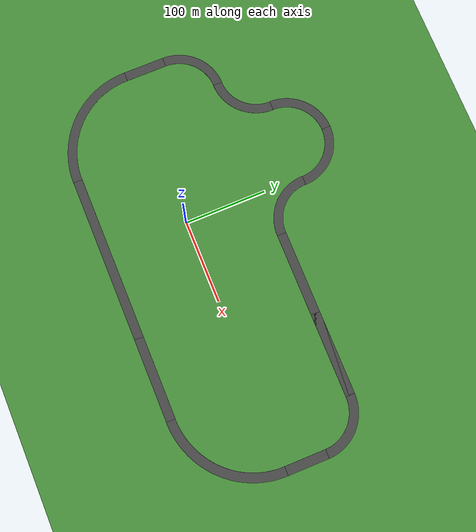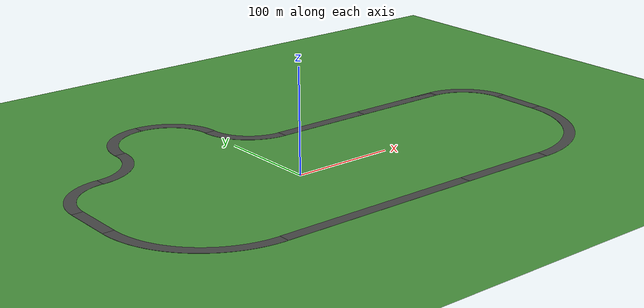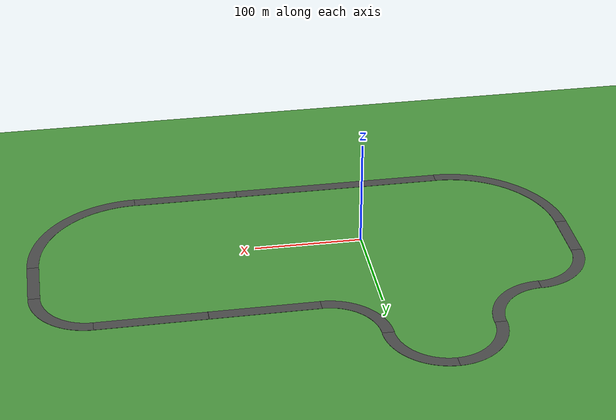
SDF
<sdf version="1.6">
 <world name="default">
  <light name="sun" type="directional">
   <pose>0 0 10 0 -0 0</pose>
   <diffuse>0.8 0.8 0.8 1</diffuse>
   <specular>0.2 0.2 0.2 1</specular>
   <attenuation>
    <range>1000</range>
    <constant>0.9</constant>
    <linear>0.01</linear>
    <quadratic>0.001</quadratic>
   </attenuation>
   <direction>-0.5 0.1 -0.9</direction>
  </light>
  <scene>
   <ambient>0.4 0.4 0.4 1</ambient>
   <background>0 0.9 1 1</background>
   <shadows>1</shadows>
   <grid>0</grid>
  </scene>
  <model name="ground_plane">
   <static>1</static>
   <link name="link">
    <collision name="collision">
     <geometry><plane><normal>0 0 1</normal><size>100 100</size></plane></geometry>
     <surface><friction><ode><mu>100</mu><mu2>50</mu2></ode></friction></surface>
    </collision>
    <visual name="visual">
     <cast_shadows>0</cast_shadows>
     <geometry><plane><normal>0 0 1</normal><size>10000 10000</size></plane></geometry>
     <material>
      <script><uri>file://media/materials/scripts/ds_sim.material</uri><name>DSSim/GrassBackground</name></script>
     </material>
    </visual>
   </link>
  </model>
  <gravity>0 0 -9.8</gravity>
  <magnetic_field>6e-06 2.3e-05 -4.2e-05</magnetic_field>
  <atmosphere type="adiabatic"/>
  <physics name="default_physics" default="0" type="ode">
   <max_step_size>0.001</max_step_size>
   <real_time_factor>1</real_time_factor>
   <real_time_update_rate>1000</real_time_update_rate>
  </physics>
  <scene>
   <ambient>0.4 0.4 0.4 1</ambient>
   <background>0.7 0.7 0.7 1</background>
   <shadows>1</shadows>
   <grid>0</grid>
  </scene>
  <spherical_coordinates>
   <surface_model>EARTH_WGS84</surface_model>
   <latitude_deg>0</latitude_deg>
   <longitude_deg>0</longitude_deg>
   <elevation>0</elevation>
   <heading_deg>0</heading_deg>
  </spherical_coordinates>
  <model name="(DS) Straight Road - 200m_8">
   <static>1</static>
   <link name="link">
    <inertial>
     <mass>1</mass>
     <inertia><ixx>1</ixx><iyy>1</iyy><izz>1</izz><ixy>0</ixy><ixz>0</ixz><iyz>0</iyz></inertia>
    </inertial>
    <collision name="collision">
     <geometry><mesh><uri>model://ds_straight_road_200m/meshes/straight_road_200m.dae</uri></mesh></geometry>
    </collision>
    <visual name="visual">
     <geometry><mesh><uri>model://ds_straight_road_200m/meshes/straight_road_200m.dae</uri></mesh></geometry>
     <material>
      <script><uri>file://media/materials/scripts/ds_sim.material</uri><name>DSSim/Road</name></script>
     </material>
    </visual>
   </link>
   <pose>5.39069 -90.765 0 0 -0 0</pose>
  </model>
  <model name="(DS) Straight Road - 100m_0">
   <static>1</static>
   <link name="link">
    <inertial>
     <mass>1</mass>
     <inertia><ixx>1</ixx><iyy>1</iyy><izz>1</izz><ixy>0</ixy><ixz>0</ixz><iyz>0</iyz></inertia>
    </inertial>
    <collision name="collision">
     <geometry><mesh><uri>model://ds_straight_road_100m/meshes/straight_road_100m.dae</uri></mesh></geometry>
    </collision>
    <visual name="visual">
     <geometry><mesh><uri>model://ds_straight_road_100m/meshes/straight_road_100m.dae</uri></mesh></geometry>
     <material>
      <script><uri>file://media/materials/scripts/ds_sim.material</uri><name>DSSim/Road</name></script>
     </material>
    </visual>
   </link>
   <pose>154.969 -90.7906 0 0 -0 0</pose>
  </model>
  <model name="(DS) Curved Road - 100m_3">
   <static>1</static>
   <link name="link">
    <inertial>
     <mass>1</mass>
     <inertia><ixx>1</ixx><iyy>1</iyy><izz>1</izz><ixy>0</ixy><ixz>0</ixz><iyz>0</iyz></inertia>
    </inertial>
    <collision name="collision">
     <geometry><mesh><uri>model://ds_curved_road_100m/meshes/curved_road_100m.dae</uri></mesh></geometry>
    </collision>
    <visual name="visual">
     <geometry><mesh><uri>model://ds_curved_road_100m/meshes/curved_road_100m.dae</uri></mesh></geometry>
     <material>
      <script><uri>file://media/materials/scripts/ds_sim.material</uri><name>DSSim/Road</name></script>
     </material>
    </visual>
   </link>
   <pose>257.705 -53.7644 0 0 -0 0</pose>
  </model>
  <model name="(DS) Straight Road - 50m">
   <static>1</static>
   <link name="link">
    <inertial>
     <mass>1</mass>
     <inertia><ixx>1</ixx><iyy>1</iyy><izz>1</izz><ixy>0</ixy><ixz>0</ixz><iyz>0</iyz></inertia>
    </inertial>
    <collision name="collision">
     <geometry><mesh><uri>model://ds_straight_road_50m/meshes/straight_road_50m.dae</uri></mesh></geometry>
    </collision>
    <visual name="visual">
     <geometry><mesh><uri>model://ds_straight_road_50m/meshes/straight_road_50m.dae</uri></mesh></geometry>
     <material>
      <script><uri>file://media/materials/scripts/ds_sim.material</uri><name>DSSim/Road</name></script>
     </material>
    </visual>
   </link>
   <pose>314.936 23.9712 0 0 0 -1.5707</pose>
  </model>
  <model name="(DS) Curved Road - 100m_7">
   <static>1</static>
   <link name="link">
    <inertial>
     <mass>1</mass>
     <inertia><ixx>1</ixx><iyy>1</iyy><izz>1</izz><ixy>0</ixy><ixz>0</ixz><iyz>0</iyz></inertia>
    </inertial>
    <collision name="collision">
     <geometry><mesh><uri>model://ds_curved_road_100m/meshes/curved_road_100m.dae</uri></mesh></geometry>
    </collision>
    <visual name="visual">
     <geometry><mesh><uri>model://ds_curved_road_100m/meshes/curved_road_100m.dae</uri></mesh></geometry>
     <material>
      <script><uri>file://media/materials/scripts/ds_sim.material</uri><name>DSSim/Road</name></script>
     </material>
    </visual>
   </link>
   <pose>-147.3 -53.7253 0 0 0 -1.5707</pose>
  </model>
  <model name="(DS) Straight Road - 50m_2">
   <static>1</static>
   <link name="link">
    <inertial>
     <mass>1</mass>
     <inertia><ixx>1</ixx><iyy>1</iyy><izz>1</izz><ixy>0</ixy><ixz>0</ixz><iyz>0</iyz></inertia>
    </inertial>
    <collision name="collision">
     <geometry><mesh><uri>model://ds_straight_road_50m/meshes/straight_road_50m.dae</uri></mesh></geometry>
    </collision>
    <visual name="visual">
     <geometry><mesh><uri>model://ds_straight_road_50m/meshes/straight_road_50m.dae</uri></mesh></geometry>
     <material>
      <script><uri>file://media/materials/scripts/ds_sim.material</uri><name>DSSim/Road</name></script>
     </material>
    </visual>
   </link>
   <pose>-204.545 24.0017 0 0 -0 1.5707</pose>
  </model>
  <model name="(DS) Curved Road - 50m_1">
   <static>1</static>
   <link name="link">
    <inertial>
     <mass>1</mass>
     <inertia><ixx>1</ixx><iyy>1</iyy><izz>1</izz><ixy>0</ixy><ixz>0</ixz><iyz>0</iyz></inertia>
    </inertial>
    <collision name="collision">
     <geometry><mesh><uri>model://ds_curved_road_50m/meshes/curved_road_50m.dae</uri></mesh></geometry>
    </collision>
    <visual name="visual">
     <geometry><mesh><uri>model://ds_curved_road_50m/meshes/curved_road_50m.dae</uri></mesh></geometry>
     <material>
      <script><uri>file://media/materials/scripts/ds_sim.material</uri><name>DSSim/Road</name></script>
     </material>
    </visual>
   </link>
   <pose>-172.292 76.726 0 0 -0 3.14159</pose>
  </model>
  <model name="(DS) Curved Road - 50m_2">
   <static>1</static>
   <link name="link">
    <inertial>
     <mass>1</mass>
     <inertia><ixx>1</ixx><iyy>1</iyy><izz>1</izz><ixy>0</ixy><ixz>0</ixz><iyz>0</iyz></inertia>
    </inertial>
    <collision name="collision">
     <geometry><mesh><uri>model://ds_curved_road_50m/meshes/curved_road_50m.dae</uri></mesh></geometry>
    </collision>
    <visual name="visual">
     <geometry><mesh><uri>model://ds_curved_road_50m/meshes/curved_road_50m.dae</uri></mesh></geometry>
     <material>
      <script><uri>file://media/materials/scripts/ds_sim.material</uri><name>DSSim/Road</name></script>
     </material>
    </visual>
   </link>
   <pose>-116.81 121.02 0 0 -0 0</pose>
  </model>
  <model name="(DS) Curved Road - 50m_3">
   <static>1</static>
   <link name="link">
    <inertial>
     <mass>1</mass>
     <inertia><ixx>1</ixx><iyy>1</iyy><izz>1</izz><ixy>0</ixy><ixz>0</ixz><iyz>0</iyz></inertia>
    </inertial>
    <collision name="collision">
     <geometry><mesh><uri>model://ds_curved_road_50m/meshes/curved_road_50m.dae</uri></mesh></geometry>
    </collision>
    <visual name="visual">
     <geometry><mesh><uri>model://ds_curved_road_50m/meshes/curved_road_50m.dae</uri></mesh></geometry>
     <material>
      <script><uri>file://media/materials/scripts/ds_sim.material</uri><name>DSSim/Road</name></script>
     </material>
    </visual>
   </link>
   <pose>-17.0573 176.488 0 0 -0 1.5707</pose>
  </model>
  <model name="(DS) Curved Road - 50m_7">
   <static>1</static>
   <link name="link">
    <inertial>
     <mass>1</mass>
     <inertia><ixx>1</ixx><iyy>1</iyy><izz>1</izz><ixy>0</ixy><ixz>0</ixz><iyz>0</iyz></inertia>
    </inertial>
    <collision name="collision">
     <geometry><mesh><uri>model://ds_curved_road_50m/meshes/curved_road_50m.dae</uri></mesh></geometry>
    </collision>
    <visual name="visual">
     <geometry><mesh><uri>model://ds_curved_road_50m/meshes/curved_road_50m.dae</uri></mesh></geometry>
     <material>
      <script><uri>file://media/materials/scripts/ds_sim.material</uri><name>DSSim/Road</name></script>
     </material>
    </visual>
   </link>
   <pose>282.727 76.7138 0 0 -0 1.5707</pose>
  </model>
  <model name="(DS) Curved Road - 50m_8">
   <static>1</static>
   <link name="link">
    <inertial>
     <mass>1</mass>
     <inertia><ixx>1</ixx><iyy>1</iyy><izz>1</izz><ixy>0</ixy><ixz>0</ixz><iyz>0</iyz></inertia>
    </inertial>
    <collision name="collision">
     <geometry><mesh><uri>model://ds_curved_road_50m/meshes/curved_road_50m.dae</uri></mesh></geometry>
    </collision>
    <visual name="visual">
     <geometry><mesh><uri>model://ds_curved_road_50m/meshes/curved_road_50m.dae</uri></mesh></geometry>
     <material>
      <script><uri>file://media/materials/scripts/ds_sim.material</uri><name>DSSim/Road</name></script>
     </material>
    </visual>
   </link>
   <pose>-72.5162 176.494 0 0 -0 3.14159</pose>
  </model>
  <model name="(DS) Straight Road - 100m_6">
   <static>1</static>
   <link name="link">
    <inertial>
     <mass>1</mass>
     <inertia><ixx>1</ixx><iyy>1</iyy><izz>1</izz><ixy>0</ixy><ixz>0</ixz><iyz>0</iyz></inertia>
    </inertial>
    <collision name="collision">
     <geometry><mesh><uri>model://ds_straight_road_100m/meshes/straight_road_100m.dae</uri></mesh></geometry>
    </collision>
    <visual name="visual">
     <geometry><mesh><uri>model://ds_straight_road_100m/meshes/straight_road_100m.dae</uri></mesh></geometry>
     <material>
      <script><uri>file://media/materials/scripts/ds_sim.material</uri><name>DSSim/Road</name></script>
     </material>
    </visual>
   </link>
   <pose>204.687 108.957 0 0 -0 0</pose>
  </model>
  <model name="(DS) Curved Road - 50m_12">
   <static>1</static>
   <link name="link">
    <inertial>
     <mass>1</mass>
     <inertia><ixx>1</ixx><iyy>1</iyy><izz>1</izz><ixy>0</ixy><ixz>0</ixz><iyz>0</iyz></inertia>
    </inertial>
    <collision name="collision">
     <geometry><mesh><uri>model://ds_curved_road_50m/meshes/curved_road_50m.dae</uri></mesh></geometry>
    </collision>
    <visual name="visual">
     <geometry><mesh><uri>model://ds_curved_road_50m/meshes/curved_road_50m.dae</uri></mesh></geometry>
     <material>
      <script><uri>file://media/materials/scripts/ds_sim.material</uri><name>DSSim/Road</name></script>
     </material>
    </visual>
   </link>
   <pose>27.2641 121.03 0 0 0 -1.5707</pose>
  </model>
  <model name="(DS) Straight Road - 100m_6_clone">
   <static>1</static>
   <link name="link">
    <inertial>
     <mass>1</mass>
     <inertia><ixx>1</ixx><iyy>1</iyy><izz>1</izz><ixy>0</ixy><ixz>0</ixz><iyz>0</iyz></inertia>
    </inertial>
    <collision name="collision">
     <geometry><mesh><uri>model://ds_straight_road_100m/meshes/straight_road_100m.dae</uri></mesh></geometry>
    </collision>
    <visual name="visual">
     <geometry><mesh><uri>model://ds_straight_road_100m/meshes/straight_road_100m.dae</uri></mesh></geometry>
     <material>
      <script><uri>file://media/materials/scripts/ds_sim.material</uri><name>DSSim/Road</name></script>
     </material>
    </visual>
   </link>
   <pose>104.722 108.956 0 0 -0 0</pose>
  </model>
  <model name="(DS) Straight Road - 100m_6_clone_0">
   <static>1</static>
   <link name="link">
    <inertial>
     <mass>1</mass>
     <inertia><ixx>1</ixx><iyy>1</iyy><izz>1</izz><ixy>0</ixy><ixz>0</ixz><iyz>0</iyz></inertia>
    </inertial>
    <collision name="collision">
     <geometry><mesh><uri>model://ds_straight_road_100m/meshes/straight_road_100m.dae</uri></mesh></geometry>
    </collision>
    <visual name="visual">
     <geometry><mesh><uri>model://ds_straight_road_100m/meshes/straight_road_100m.dae</uri></mesh></geometry>
     <material>
      <script><uri>file://media/materials/scripts/ds_sim.material</uri><name>DSSim/Road</name></script>
     </material>
    </visual>
   </link>
   <pose>204.997 108.965 0 0 -0 0</pose>
  </model>
 </world>
</sdf>
